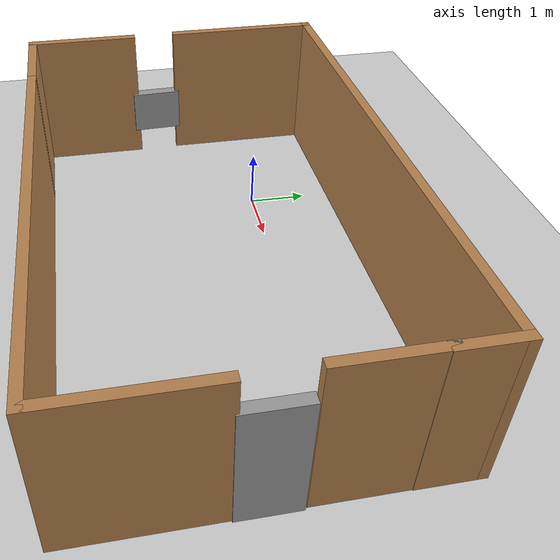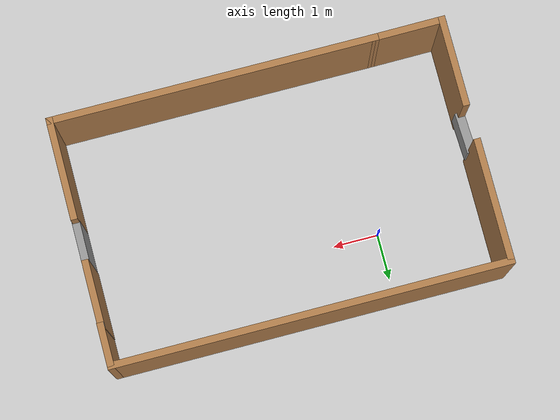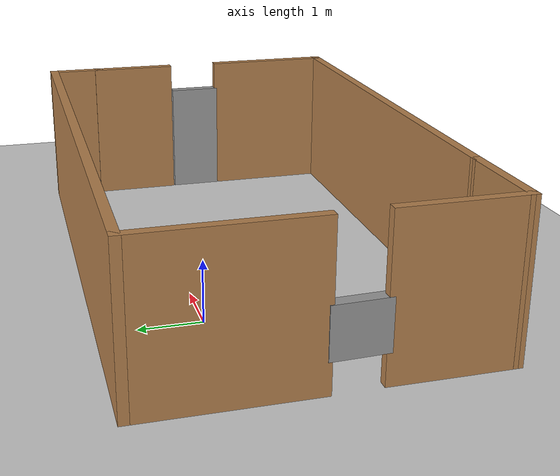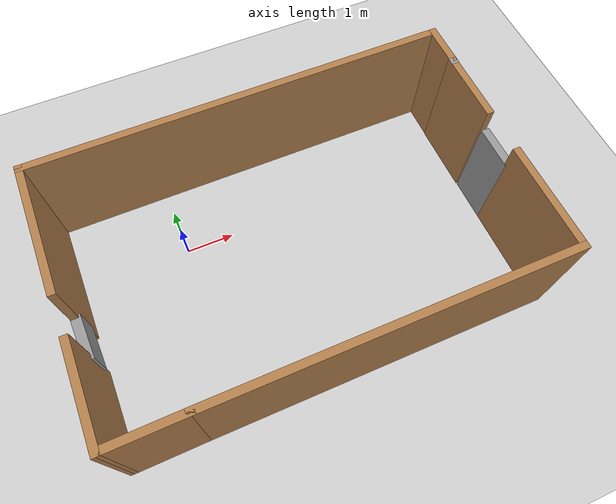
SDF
<sdf version="1.7">
 <world name="default">
  <light name="sun" type="directional">
   <pose>0 0 10 0 -0 0</pose>
   <diffuse>0.8 0.8 0.8 1</diffuse>
   <specular>0.2 0.2 0.2 1</specular>
   <attenuation>
    <range>1000</range>
    <constant>0.9</constant>
    <linear>0.01</linear>
    <quadratic>0.001</quadratic>
   </attenuation>
   <direction>-0.5 0.1 -0.9</direction>
   <spot><inner_angle>0</inner_angle><outer_angle>0</outer_angle><falloff>0</falloff></spot>
  </light>
  <model name="ground_plane">
   <static>1</static>
   <link name="link">
    <collision name="collision">
     <geometry><plane><normal>0 0 1</normal><size>100 100</size></plane></geometry>
     <surface>
      <contact><collide_bitmask>65535</collide_bitmask></contact>
      <friction><ode><mu>100</mu><mu2>50</mu2></ode></friction>
     </surface>
    </collision>
    <visual name="visual">
     <cast_shadows>0</cast_shadows>
     <geometry><plane><normal>0 0 1</normal><size>100 100</size></plane></geometry>
     <material>
      <script><uri>file://media/materials/scripts/gazebo.material</uri><name>Gazebo/Grey</name></script>
     </material>
    </visual>
   </link>
  </model>
  <gravity>0 0 -9.8</gravity>
  <magnetic_field>6e-06 2.3e-05 -4.2e-05</magnetic_field>
  <atmosphere type="adiabatic"/>
  <physics type="ode">
   <max_step_size>0.001</max_step_size>
   <real_time_factor>1</real_time_factor>
   <real_time_update_rate>1000</real_time_update_rate>
  </physics>
  <scene><ambient>0.4 0.4 0.4 1</ambient><background>0.7 0.7 0.7 1</background><shadows>1</shadows></scene>
  <audio><device>default</device></audio>
  <spherical_coordinates>
   <surface_model>EARTH_WGS84</surface_model>
   <latitude_deg>0</latitude_deg>
   <longitude_deg>0</longitude_deg>
   <elevation>0</elevation>
   <heading_deg>0</heading_deg>
  </spherical_coordinates>
  <model name="test">
   <pose>1.94969 -1.13314 0 0 -0 0</pose>
   <link name="Door_0">
    <collision name="Door_0_Collision">
     <geometry><box><size>0.9 0.17 2</size></box></geometry>
     <pose>0 0 1 0 -0 0</pose>
    </collision>
    <visual name="Door_0_Visual">
     <pose>0 0 1 0 -0 0</pose>
     <geometry><box><size>0.9 0.17 2</size></box></geometry>
     <material>
      <script><uri>file://media/materials/scripts/gazebo.material</uri><name>Gazebo/Grey</name></script>
     </material>
    </visual>
    <pose>4.31 -0.079472 0 0 -0 -1.57233</pose>
   </link>
   <link name="Wall_10">
    <collision name="Wall_10_Collision">
     <geometry><box><size>2.75 0.15 2.5</size></box></geometry>
     <pose>0 0 1.25 0 -0 0</pose>
    </collision>
    <visual name="Wall_10_Visual">
     <pose>0 0 1.25 0 -0 0</pose>
     <geometry><box><size>2.75 0.15 2.5</size></box></geometry>
     <material>
      <script><uri>file://media/materials/scripts/gazebo.material</uri><name>Gazebo/Wood</name></script>
      <ambient>1 1 1 1</ambient>
     </material>
     <meta><layer>0</layer></meta>
    </visual>
    <pose>-4.3 1.37053 0 0 -0 -1.5708</pose>
   </link>
   <link name="Wall_13">
    <collision name="Wall_13_Collision">
     <geometry><box><size>2 0.15 2.5</size></box></geometry>
     <pose>0 0 1.25 0 -0 0</pose>
    </collision>
    <visual name="Wall_13_Visual">
     <pose>0 0 1.25 0 -0 0</pose>
     <geometry><box><size>2 0.15 2.5</size></box></geometry>
     <material>
      <script><uri>file://media/materials/scripts/gazebo.material</uri><name>Gazebo/Wood</name></script>
      <ambient>1 1 1 1</ambient>
     </material>
     <meta><layer>0</layer></meta>
    </visual>
    <pose>-4.28055 -1.745 0 0 -0 -1.5708</pose>
   </link>
   <link name="Wall_14">
    <collision name="Wall_14_Collision">
     <geometry><box><size>1.63059 0.15 2.5</size></box></geometry>
     <pose>0 0 1.25 0 -0 0</pose>
    </collision>
    <visual name="Wall_14_Visual">
     <pose>0 0 1.25 0 -0 0</pose>
     <geometry><box><size>1.63059 0.15 2.5</size></box></geometry>
     <material>
      <script><uri>file://media/materials/scripts/gazebo.material</uri><name>Gazebo/Wood</name></script>
      <ambient>1 1 1 1</ambient>
     </material>
     <meta><layer>0</layer></meta>
    </visual>
    <pose>-3.54027 -2.66473 0 0 -0 0.007109</pose>
   </link>
   <link name="Wall_3">
    <collision name="Wall_3_Collision">
     <geometry><box><size>7.25 0.15 2.5</size></box></geometry>
     <pose>0 0 1.25 0 -0 0</pose>
    </collision>
    <visual name="Wall_3_Visual">
     <pose>0 0 1.25 0 -0 0</pose>
     <geometry><box><size>7.25 0.15 2.5</size></box></geometry>
     <material>
      <script><uri>file://media/materials/scripts/gazebo.material</uri><name>Gazebo/Wood</name></script>
      <ambient>1 1 1 1</ambient>
     </material>
     <meta><layer>0</layer></meta>
    </visual>
    <pose>0.75 -2.65947 0 0 -0 0</pose>
   </link>
   <link name="Wall_4">
    <collision name="Wall_4_Collision">
     <geometry><box><size>2.25 0.15 2.5</size></box></geometry>
     <pose>0 0 1.25 0 -0 0</pose>
    </collision>
    <visual name="Wall_4_Visual">
     <pose>0 0 1.25 0 -0 0</pose>
     <geometry><box><size>2.25 0.15 2.5</size></box></geometry>
     <material>
      <script><uri>file://media/materials/scripts/gazebo.material</uri><name>Gazebo/Wood</name></script>
      <ambient>1 1 1 1</ambient>
     </material>
     <meta><layer>0</layer></meta>
    </visual>
    <pose>4.3 -1.60947 0 0 -0 1.5708</pose>
   </link>
   <link name="Wall_6">
    <collision name="Wall_6_Collision">
     <geometry><box><size>1.5 0.15 2.5</size></box></geometry>
     <pose>0 0 1.25 0 -0 0</pose>
    </collision>
    <visual name="Wall_6_Visual">
     <pose>0 0 1.25 0 -0 0</pose>
     <geometry><box><size>1.5 0.15 2.5</size></box></geometry>
     <material>
      <script><uri>file://media/materials/scripts/gazebo.material</uri><name>Gazebo/Wood</name></script>
      <ambient>1 1 1 1</ambient>
     </material>
     <meta><layer>0</layer></meta>
    </visual>
    <pose>4.29 1.14553 0 0 -0 1.5708</pose>
   </link>
   <link name="Wall_7">
    <collision name="Wall_7_Collision">
     <geometry><box><size>0.16 0.15 2.5</size></box></geometry>
     <pose>0 0 1.25 0 -0 0</pose>
    </collision>
    <visual name="Wall_7_Visual">
     <pose>0 0 1.25 0 -0 0</pose>
     <geometry><box><size>0.16 0.15 2.5</size></box></geometry>
     <material>
      <script><uri>file://media/materials/scripts/gazebo.material</uri><name>Gazebo/Grey</name></script>
      <ambient>1 1 1 1</ambient>
     </material>
     <meta><layer>0</layer></meta>
    </visual>
    <pose>4.295 1.82053 0 0 -0 0</pose>
   </link>
   <link name="Wall_8">
    <collision name="Wall_8_Collision">
     <geometry><box><size>1 0.15 2.5</size></box></geometry>
     <pose>0 0 1.25 0 -0 0</pose>
    </collision>
    <visual name="Wall_8_Visual">
     <pose>0 0 1.25 0 -0 0</pose>
     <geometry><box><size>1 0.15 2.5</size></box></geometry>
     <material>
      <script><uri>file://media/materials/scripts/gazebo.material</uri><name>Gazebo/Wood</name></script>
      <ambient>1 1 1 1</ambient>
     </material>
     <meta><layer>0</layer></meta>
    </visual>
    <pose>4.3 2.24553 0 0 -0 1.5708</pose>
   </link>
   <link name="Wall_9">
    <collision name="Wall_9_Collision">
     <geometry><box><size>8.75 0.15 2.5</size></box></geometry>
     <pose>0 0 1.25 0 -0 0</pose>
    </collision>
    <visual name="Wall_9_Visual">
     <pose>0 0 1.25 0 -0 0</pose>
     <geometry><box><size>8.75 0.15 2.5</size></box></geometry>
     <material>
      <script><uri>file://media/materials/scripts/gazebo.material</uri><name>Gazebo/Wood</name></script>
      <ambient>1 1 1 1</ambient>
     </material>
     <meta><layer>0</layer></meta>
    </visual>
    <pose>0 2.67053 0 0 -0 3.14159</pose>
   </link>
   <link name="Window_0">
    <collision name="Window_0_Collision">
     <geometry><box><size>0.90954 0.2 0.8</size></box></geometry>
     <pose>0 0 0.4 0 -0 0</pose>
    </collision>
    <visual name="Window_0_Visual">
     <pose>0 0 0.4 0 -0 0</pose>
     <geometry><box><size>0.90954 0.2 0.8</size></box></geometry>
     <material>
      <script><uri>file://media/materials/scripts/gazebo.material</uri><name>Gazebo/Grey</name></script>
     </material>
    </visual>
    <pose>-4.27208 -0.394742 0.5 0 0 -1.53272</pose>
   </link>
   <static>1</static>
  </model>
 </world>
</sdf>
